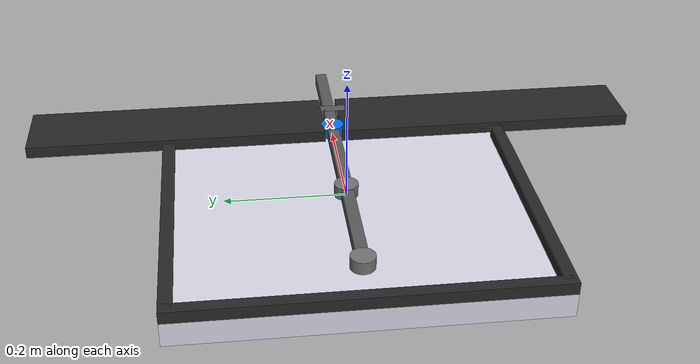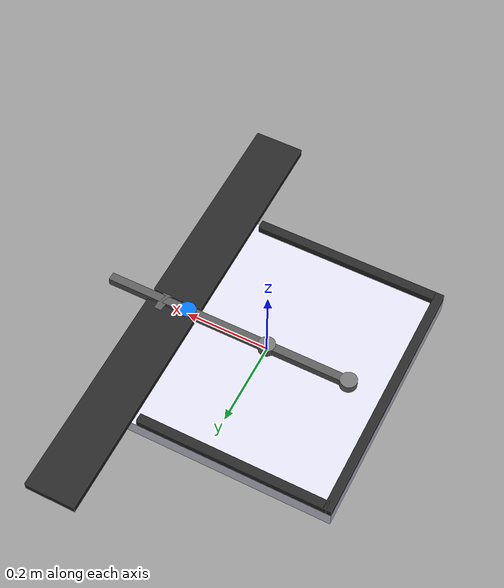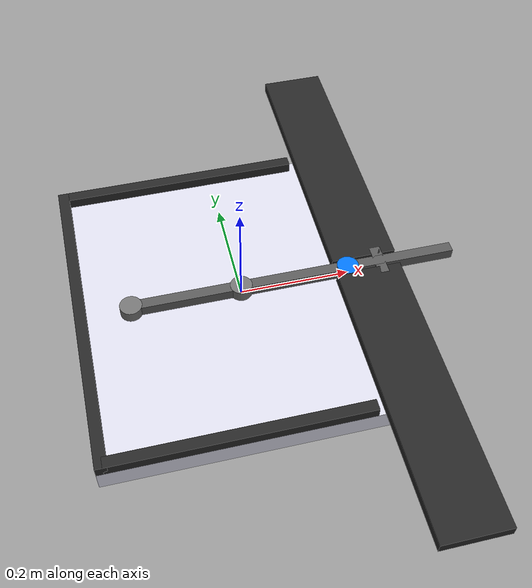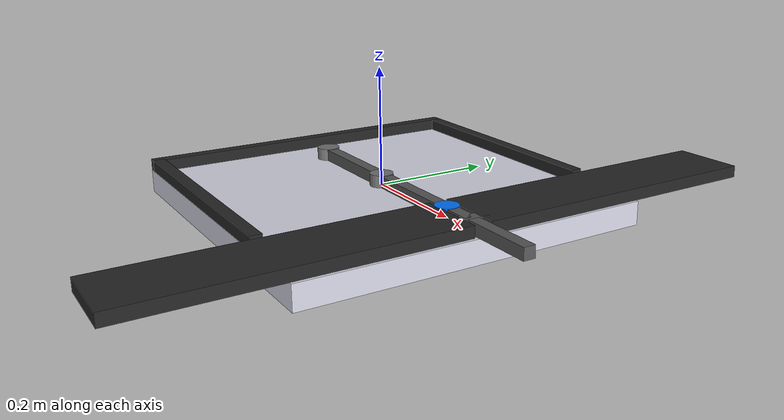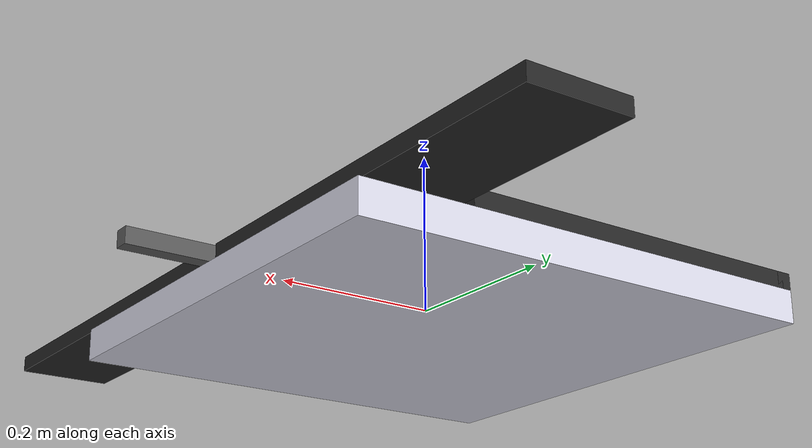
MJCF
<mujoco model="peg-insertion">
    <compiler angle="radian" inertiafromgeom="true"/>
    <default>
        <joint armature="1" damping="1" limited="true"/>
        <geom contype="1" rgba="0.7 0.7 0 1" friction="0.001 0.001 0.001"  mass="0.001"/>
    </default>
    <option gravity="0 0 -9.81" integrator="RK4" timestep="0.01"/>
    <asset>
        <texture type="skybox" builtin="gradient" rgb1="0.9 0.7 0.9" rgb2="0.94 0.97 0.97" width="2" height="2"/>
    </asset>
    <worldbody>
        <include file="lighting.xml"/>
        <include file="peg-2d-arena.xml"/>
        <!-- Arm and Peg -->
        <body name="arm" pos="-0.2 0 0.01">
            <geom conaffinity="1" contype="0" fromto="0 0 -0.011 0 0 0.011" name="shoulder" rgba="0.45 0.45 0.45 1"
                  size=".02" type="cylinder"/>
            <geom conaffinity="1" name="link0" rgba="0.35 0.35 0.35 1" size="0.1 0.01 0.01" pos="0.1 0 0" type="box"/>
            <joint axis="0 0 1" name="joint0" pos="0 0 0" type="hinge" limited="true" range="-1.57 1.57" damping="50"/>
            <body name="arm2" pos="0.2 0 0.0">
                <geom conaffinity="0" contype="0" fromto="0 0 -0.011 0 0 0.011" name="elbow" rgba="0.45 0.45 0.45 1"
                      size=".02" type="cylinder"/>
                <geom conaffinity="1" name="link1" rgba="0.35 0.35 0.35 1" size="0.1 0.01 0.01" pos="0.1 0 0"
                      type="box"/>
                <joint axis="0 0 1" name="joint1" pos="0 0 0" type="hinge" limited="true" range="-2.5 2.5" damping="50"/>
                <body name="peg" pos="0.2 0 0.0">
                    <geom conaffinity="0" contype="0" fromto="0 0 -0.011 0 0 0.011" name="hand" rgba="0 0.45 1 1"
                          size=".02" type="cylinder"/>
                    <geom conaffinity="1" name="guard" rgba="0.35 0.35 0.35 1" size="0.01 0.03 0.01" pos="0.06 0 0"
                          type="box"/>
                    <geom conaffinity="1" name="link2" rgba="0.35 0.35 0.35 1" size="0.1 0.01 0.01" pos="0.1 0 0"
                          type="box"/>
                    <joint axis="0 0 1" name="joint2" pos="0 0 0" type="hinge" limited="true" range="-2.7 2.7"
                           damping="50"/>
                </body>
            </body>
        </body>
        <!-- Slot -->
        <body name="slot" pos="0 0 0.01">
            <geom contype="0" conaffinity="1" name="slot0" rgba="0.15 0.15 0.15 1" size=".06 0.26 0.01"
                  pos="0.235  .275 0" type="box" friction="1 0.1 0.1"/>
            <geom contype="0" conaffinity="1" name="slot3" rgba="0.15 0.15 0.15 1" size=".06 0.26 0.01"
                  pos="0.235 -.275 0" type="box" friction="1 0.1 0.1"/>
        </body>
    </worldbody>
    <actuator>
        <motor forcelimited="true" forcerange="-1.0 1.0" gear="100.0" joint="joint0"/>
        <motor forcelimited="true" forcerange="-1.0 1.0" gear="100.0" joint="joint1"/>
        <motor forcelimited="true" forcerange="-1.0 1.0" gear="100.0" joint="joint2"/>
    </actuator>
</mujoco>

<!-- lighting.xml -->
<mujoco>
    <light directional="true" ambient="0.2 0.2 0.2" diffuse="0.8 0.8 0.8" specular="0.3 0.3 0.3"
           castshadow="false" pos="0.9 0.6 3" dir="-0.5 -0.5 -0.7" name="light0"/>
</mujoco>

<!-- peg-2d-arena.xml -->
<mujoco model="reacher">
    <!-- Arena -->
    <geom conaffinity="0" contype="0" name="ground" pos="0 0 -0.02" rgba="0.85 0.85 0.91 1" size="0.3 0.3 0.02"
          type="box"/>
    <geom conaffinity="1" name="sideN" rgba="0.15 0.15 0.15 1" size=".225 0.01 0.01" pos="-0.0625 .29 0.01" type="box"/>
    <geom conaffinity="1" name="sideS" rgba="0.15 0.15 0.15 1" size=".225 0.01 0.01" pos="-0.0625 -.29 0.01" type="box"/>
    <geom conaffinity="1" name="sideW" rgba="0.15 0.15 0.15 1" size="0.01 .3 0.01" pos="-.29 0 0.01" type="box"/>
    <!--the wall in the middle-->
</mujoco>
